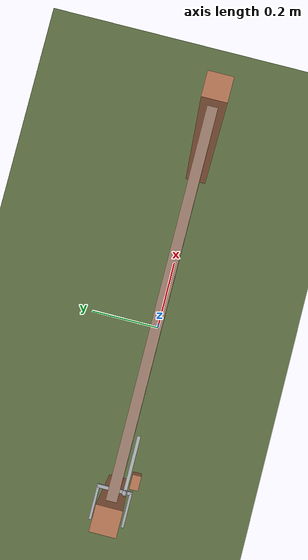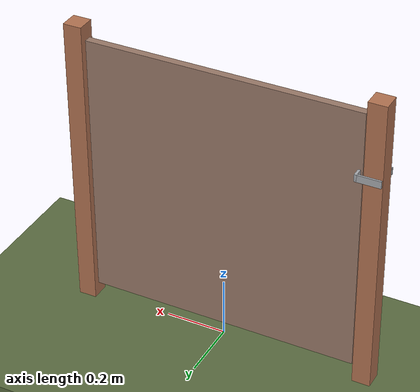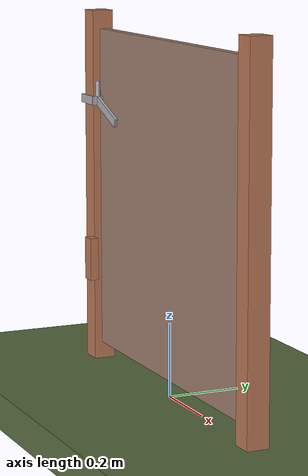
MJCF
<?xml version="1.0" ?>
<mujoco model="db0751_gate_swing_minimal">
  <compiler angle="radian" meshdir="../../hardware" texturedir="../../textures" autolimits="true" inertiafromgeom="false"/>
  <option timestep="0.002" integrator="implicitfast" cone="elliptic" impratio="10" noslip_iterations="3">
    <flag multiccd="enable"/>
  </option>
  <size memory="16M"/>
  <default>
    <geom condim="4" solref="0.005 1" solimp="0.95 0.99 0.001"/>
    <joint solreflimit="0.005 1" solimplimit="0.95 0.99 0.001"/>
    <tendon solreflimit="0.005 1"/>
    <equality solref="0.002 1"/>
  </default>
  <visual>
    <headlight ambient="0.4 0.4 0.4" diffuse="0.7 0.7 0.7" specular="0.2 0.2 0.2"/>
    <quality shadowsize="4096"/>
    <map znear="0.01" zfar="60"/>
  </visual>
  <asset>
    <material name="mat_floor" rgba="0.35 0.42 0.25 1" specular="0.2" shininess="0.15" reflectance="0"/>
    <material name="mat_wall" rgba="0.78 0.76 0.7 1" specular="0.2" shininess="0.1" reflectance="0"/>
    <material name="mat_leaf" rgba="0.6 0.475 0.41 1" specular="0.2" shininess="0.4" reflectance="0"/>
    <material name="mat_leaf_brace" rgba="0.54 0.427 0.369 1" specular="0.2" shininess="0.2" reflectance="0"/>
    <material name="mat_hinge" rgba="0.65 0.66 0.68 1" specular="0.74" shininess="0.5" reflectance="0.36"/>
    <material name="mat_op_steel_galvanized" rgba="0.65 0.66 0.68 1" specular="0.74" shininess="0.5" reflectance="0.36"/>
    <material name="mat_frame" rgba="0.7 0.45 0.32 1" specular="0.2" shininess="0.4" reflectance="0"/>
    <material name="mat_fence" rgba="0.7 0.45 0.32 1" specular="0.2" shininess="0.4" reflectance="0"/>
    <texture name="skybox" type="skybox" builtin="gradient" rgb1="0.6 0.7 0.85" rgb2="0.9 0.92 0.95" width="256" height="256"/>
  </asset>
  <worldbody>
    <light name="sun" pos="1.5 -2.5 4" dir="-0.3 0.5 -0.8" directional="true" diffuse="0.8 0.8 0.8" specular="0.3 0.3 0.3" castshadow="true"/>
    <light name="fill" pos="-1.5 2.5 3" dir="0.3 -0.5 -0.7" directional="true" diffuse="0.35 0.35 0.4" castshadow="false"/>
    <camera name="robot_view" pos="0 -1.875 0.985" xyaxes="1 0 0 0 0.26963 0.962964" fovy="52"/>
    <camera name="far_view" pos="0 1.875 0.985" xyaxes="-1 0 0 0 -0.26963 0.962964" fovy="52"/>
    <camera name="iso" pos="-1.425 -1.575 1.285" xyaxes="0.741536 -0.670913 0 0.242917 0.268487 0.932151" fovy="46"/>
    <camera name="detail_handle" pos="-0.256 -0.8245 1.085" xyaxes="0.97561 0.219512 0 -0.070934 0.315262 0.94635" fovy="38"/>
    <geom name="floor" type="box" size="6 6 0.05" pos="0 0 -0.05" material="mat_floor" group="0" contype="1" conaffinity="1" friction="0.8 0.005 0.0001" density="2400"/>
    <geom name="post_hinge" type="box" size="0.03 0.03 0.5" pos="0.486 0 0.5" material="mat_frame" group="0" contype="1" conaffinity="1" friction="0.6 0.005 0.0001" density="350"/>
    <geom name="post_latch" type="box" size="0.03 0.03 0.5" pos="-0.486 0 0.5" material="mat_frame" group="0" contype="1" conaffinity="1" friction="0.6 0.005 0.0001" density="350"/>
    <geom name="gate_stop" type="box" size="0.02 0.012 0.06" pos="-0.436 -0.0465 0.3" material="mat_frame" group="0" contype="1" conaffinity="1" friction="0.6 0.005 0.0001" density="350"/>
    <site name="approach_point" pos="0 -1.5 0" quat="1 0 0 0" size="0.05" rgba="0.2 0.9 0.2 0.5" group="4"/>
    <site name="goal_point" pos="0 1.5 0" quat="1 0 0 0" size="0.05" rgba="0.2 0.9 0.2 0.5" group="4"/>
    <site name="door_plane_center" pos="0 0 0.46" quat="1 0 0 0" size="0.02" rgba="0.2 0.9 0.2 0.5" group="4"/>
    <body name="leaf" pos="0.456 0 0">
      <inertial pos="-0.453 0 0.5" mass="8.745337" quat="0 0 0.707107 0.707107" diaginertia="0.590765734 0.590765734 1.180620496"/>
      <joint name="leaf_hinge" type="hinge" axis="0 0 -1" pos="-0.003 0.05 0" limited="true" range="0 1.396263" damping="1.106642" frictionloss="0.683646" stiffness="5" springref="-0.8" armature="0.02"/>
      <geom name="leaf_slab" type="box" size="0.45 0.0125 0.45" pos="-0.453 0 0.5" material="mat_leaf" group="0" contype="1" conaffinity="1" friction="0.35 0.005 0.0001" density="1"/>
      <site name="leaf_edge_mid" pos="-0.903 0 0.45" quat="1 0 0 0" size="0.02" rgba="0.2 0.9 0.2 0.5" group="4"/>
      <body name="leaf_fork" pos="-0.763 0 0.7">
        <inertial pos="-0.117803 -0.010928 0.042719" mass="0.176769" quat="0.983418 -0.049203 0.141769 -0.10183" diaginertia="0.000149395 0.000554677 0.000645256"/>
        <joint name="leaf_fork_hinge" type="hinge" axis="0 1 0" limited="true" range="0 1.2" damping="0.028928" frictionloss="0.004642" armature="0.0001"/>
        <geom name="leaf_fork_arm" type="box" size="0.069176 0.004 0.012" pos="-0.0645 -0.0245 0.025" quat="0.982958 0 0.183833 0" material="mat_op_steel_galvanized" group="0" contype="1" conaffinity="1" friction="0.6 0.005 0.0001" density="2500"/>
        <geom name="leaf_fork_tine_n" type="box" size="0.04 0.003 0.012" pos="-0.169 -0.039 0.05" material="mat_op_steel_galvanized" group="0" contype="1" conaffinity="1" friction="0.6 0.005 0.0001" density="2500"/>
        <geom name="leaf_fork_tine_p" type="box" size="0.04 0.003 0.012" pos="-0.169 0.039 0.05" material="mat_op_steel_galvanized" group="0" contype="1" conaffinity="1" friction="0.6 0.005 0.0001" density="2500"/>
        <geom name="leaf_fork_bridge" type="box" size="0.004 0.042 0.012" pos="-0.129 0 0.05" material="mat_op_steel_galvanized" group="0" contype="1" conaffinity="1" friction="0.6 0.005 0.0001" density="2500"/>
        <geom name="leaf_fork_handle" type="capsule" size="0.006 0.018" pos="-0.129 -0.0245 0.08" material="mat_op_steel_galvanized" group="0" contype="1" conaffinity="1" friction="0.7 0.01 0.0001" density="2500"/>
        <site name="leaf_fork_grip" pos="-0.129 -0.0245 0.105" quat="1 0 0 0" size="0.012" rgba="0.2 0.9 0.2 0.5" group="4"/>
      </body>
    </body>
  </worldbody>
  <sensor>
    <jointpos name="leaf_hinge_pos" joint="leaf_hinge"/>
    <jointvel name="leaf_hinge_vel" joint="leaf_hinge"/>
    <jointpos name="leaf_fork_hinge_pos" joint="leaf_fork_hinge"/>
    <jointvel name="leaf_fork_hinge_vel" joint="leaf_fork_hinge"/>
  </sensor>
</mujoco>
